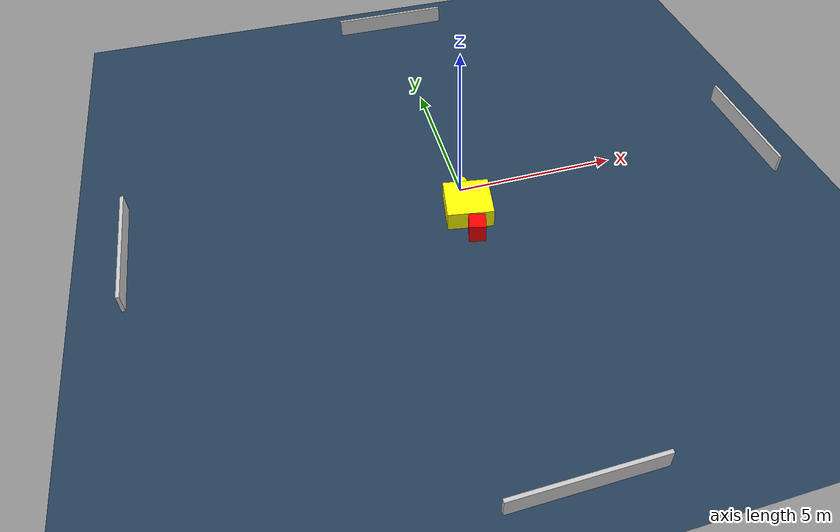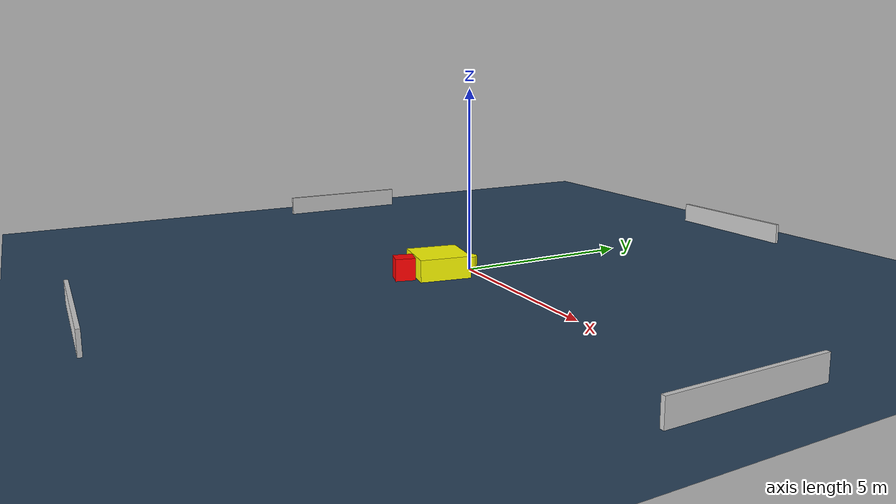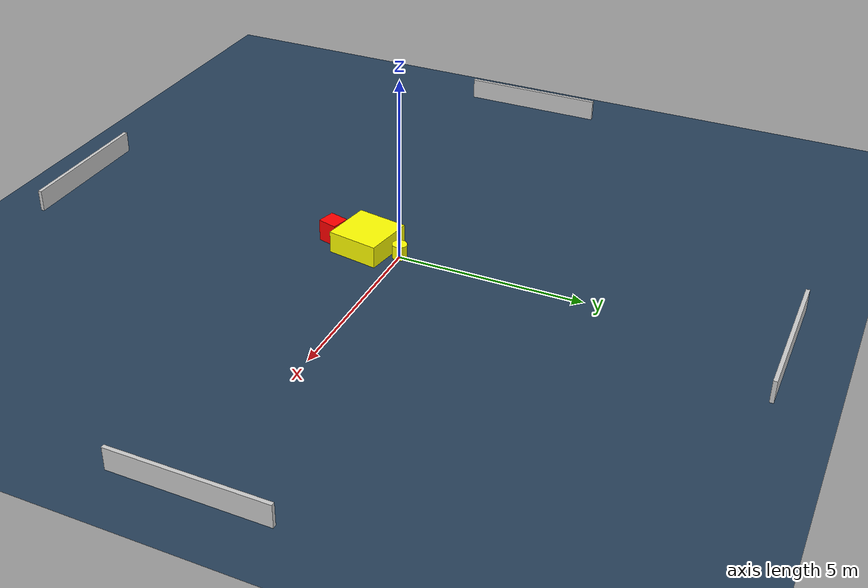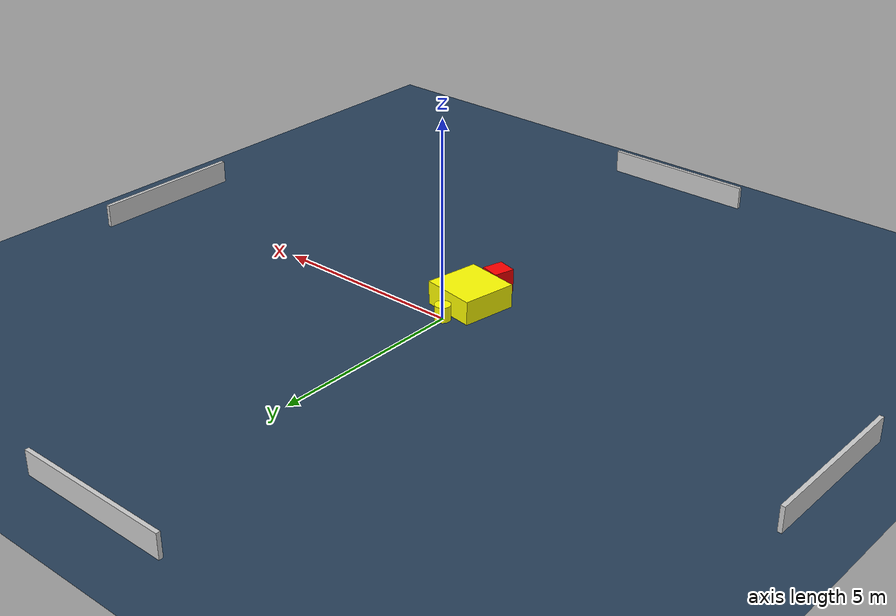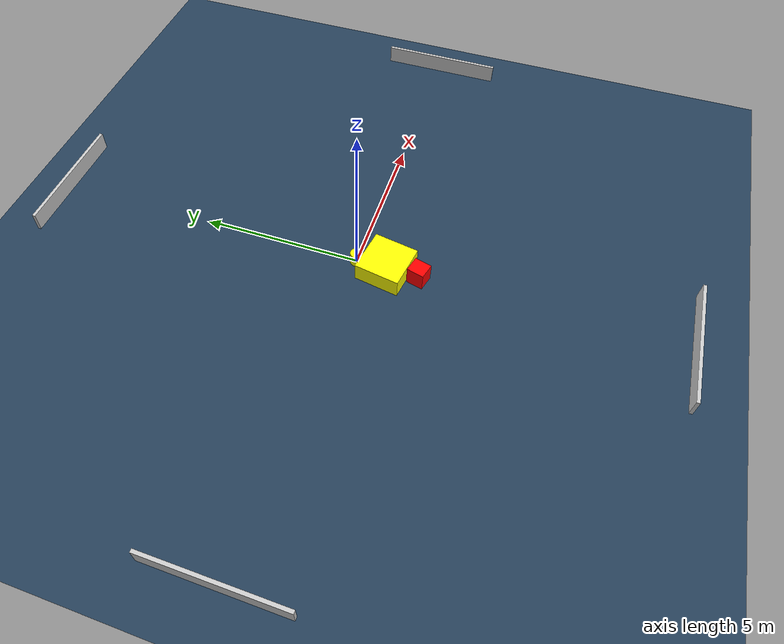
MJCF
<?xml version="1.0" ?>
<mujoco model="generated_environment">
  <option timestep="0.01" integrator="RK4" cone="elliptic"/>
  <default>
    <geom density="1"/>
  </default>
  <asset>
    <texture builtin="gradient" height="3072" name="skybox" rgb1="0.3 0.5 0.7" rgb2="0 0 0" type="skybox" width="512"/>
    <texture builtin="checker" height="300" name="groundplane" rgb1="0.2 0.3 0.4" rgb2="0.1 0.2 0.3" type="2d" width="300"/>
    <material name="groundplane" reflectance="0.2" texrepeat="5 5" texture="groundplane"/>
  </asset>
  <worldbody>
    <light dir="0 0 -1" directional="true" pos="0 0 1.5"/>
    <geom condim="3" friction="0.5 0.005 0.001" material="groundplane" name="floor" pos="0 0 0" size="0 0 0.05" type="plane"/>
    <body name="walls">
      <geom name="wall_1" condim="4" pos="-10.0 0.0 0.3" rgba="0.800000011920929 0.800000011920929 0.800000011920929 1.0" size="0.05 2.0 0.3" type="box"/>
      <geom name="wall_2" condim="4" pos="10.0 0.0 0.3" rgba="0.800000011920929 0.800000011920929 0.800000011920929 1.0" size="0.05 2.0 0.3" type="box"/>
      <geom name="wall_3" condim="4" pos="0.0 -10.0 0.3" rgba="0.800000011920929 0.800000011920929 0.800000011920929 1.0" size="2.0 0.05 0.3" type="box"/>
      <geom name="wall_4" condim="4" pos="0.0 10.0 0.3" rgba="0.800000011920929 0.800000011920929 0.800000011920929 1.0" size="2.0 0.05 0.3" type="box"/>
    </body>
    <body name="robot">
      <joint name="joint_x" type="slide" pos="0 0 0" axis="1 0 0"/>
      <joint name="joint_y" type="slide" pos="0 0 0" axis="0 1 0"/>
      <geom name="robot" type="cylinder" pos="0.0 0.0 0.2" size="0.2 0.2 0.0" mass="5.0" friction="1.0 0.005 0.0001" condim="4" rgba="1.0 1.0 0.0 1.0"/>
    </body>
    <body name="obstacle_1_movable">
      <geom name="obstacle_1_movable" condim="4" pos="-0.04106989545494634 -0.9548211178280765 0.3" euler="0 0 260.5528163990587" friction="0.0 0.005 0.001" rgba="1.0 1.0 0.0 1.0" size="0.703426966864561 0.6966826606292529 0.3" type="box" mass="0.1"/>
      <joint type="free"/>
    </body>
    <body name="obstacle_2_static">
      <geom name="obstacle_2_static" condim="4" pos="-0.0669245369360872 -1.975179188586069 0.3" euler="0 0 165.12485490254795" friction="0.0 0.005 0.001" rgba="1.0 0.0 0.0 1.0" size="0.24987181520422025 0.26888382647456055 0.3" type="box"/>
    </body>
  </worldbody>
  <actuator>
    <motor name="actuator_x" joint="joint_x" gear="1" ctrlrange="-1 1"/>
    <motor name="actuator_y" joint="joint_y" gear="1" ctrlrange="-1 1"/>
  </actuator>
</mujoco>
